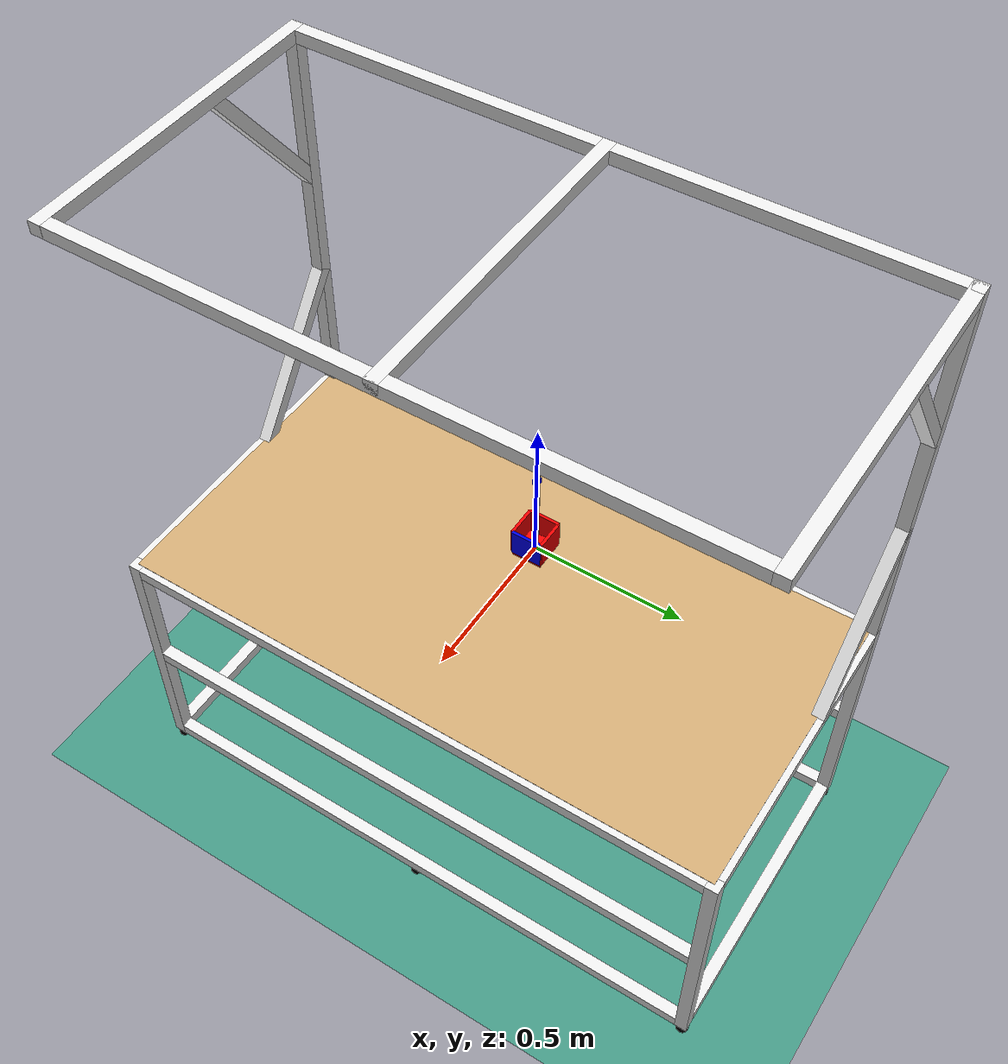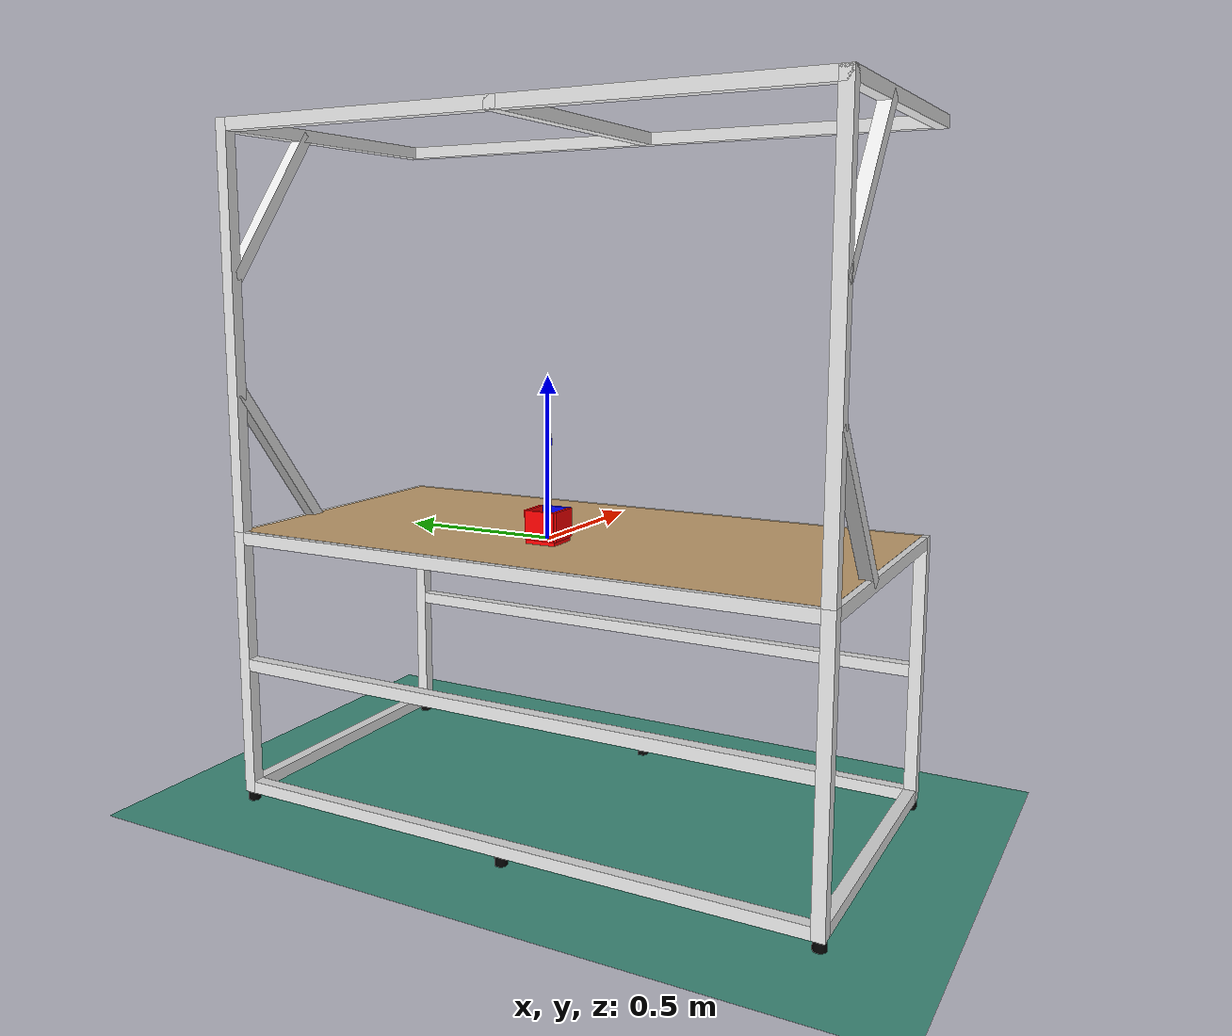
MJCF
<mujoco model="base_surrounding">
  <compiler angle="radian" discardvisual="false" />
  <option collision="all" cone="elliptic" gravity="0 0 -9.81" impratio="3" solver="Newton" timestep="0.002" tolerance="1e-10" />
  <size nconmax="2000" njmax="2000" />
  <asset>
    <texture builtin="gradient" height="32" rgb1="0.26 0.58 0.51" rgb2="0.26 0.58 0.51" type="skybox" width="32" />
  </asset>
  <visual>
    <map zfar="1000" znear="0.001" />
    <scale actuatorwidth="0" />
  </visual>
  <worldbody>
    <light castshadow="true" cutoff="100" diffuse="1 1 1" dir="-0 0 -1.3" directional="true" exponent="1" pos="0 0 1.3" specular=".1 .1 .1" />
    <body name="ground" pos="0 0 -0.94">
      <geom name="ground:geom1" rgba="0.26 0.58 0.51 1" size="0 0 1" type="plane" />
    </body>

    <body name="box_0" pos="0 0 0.0" quat="1 0 0 0">
        <geom pos="0 0 0" size="0.05 0.05 0.01" rgba="1 0 0 1.0" type="box" mass="2.0" friction="0.3 0.001 0.0001" priority="1"/>
        <geom pos="0.05 0 0.0485" size="0.005 0.05 0.045" rgba="0 0 1 1.0" type="box" mass="0.001"/>
        <geom pos="0 0.05 0.0485" size="0.05 0.005 0.045" rgba="1 0 0 1.0" type="box" mass="0.001"/>
        <geom pos="-0.05 0 0.0485" size="0.005 0.05 0.045" rgba="1 0 0 1.0" type="box" mass="0.001"/>
        <geom pos="0 -0.05 0.0485" size="0.05 0.005 0.045" rgba="1 0 0 1.0" type="box" mass="0.001"/>
        <joint name="box_joint" type="free"/>
    </body>

    <body name="target_pos" pos="0 0 0">
    <!--body name="target_pos" pos="0.5 0.5 0.0"-->
      <site type="box" pos="0 0 0" rgba="0 1 0 0.3" size="0.05 0.05 0.01" />
      <site pos="0.05 0 0.0485" size="0.005 0.05 0.045" rgba="0 0 1 0.5" type="box"/>
      <site pos="0 0.05 0.0485" size="0.05 0.005 0.045" rgba="0 1 0 0.5" type="box"/>
      <site pos="-0.05 0 0.0485" size="0.005 0.05 0.045" rgba="0 1 0 0.5" type="box"/>
      <site pos="0 -0.05 0.0485" size="0.05 0.005 0.045" rgba="0 1 0 0.5" type="box"/>
    </body>

    <body name="replan_target_pos" pos="0 0 0">
    <!--body name="replan_target_pos" pos="0.5 0.5 1"-->
      <site type="box" pos="0 0 0" rgba="1 1 0 0.3" size="0.05 0.05 0.01" />
      <site pos="0.05 0 0.0485" size="0.005 0.05 0.045" rgba="0 0 1 0.5" type="box"/>
      <site pos="0 0.05 0.0485" size="0.05 0.005 0.045" rgba="1 1 0 0.5" type="box"/>
      <site pos="-0.05 0 0.0485" size="0.005 0.05 0.045" rgba="1 1 0 0.5" type="box"/>
      <site pos="0 -0.05 0.0485" size="0.05 0.005 0.045" rgba="1 1 0 0.5" type="box"/>
    </body>

    <body name="finger" pos="0 0 .1">
    <!--body name="finger" pos="0.6 0.15 0.1"-->
     <geom type="cylinder" size="0.01 0.15" pos="0 0 0.075" mass="1.0"/>
     <site name="finger_tip" type="box" rgba="0 0 1 1." size="0.01 0.01 0.01" pos="0 0 0.2"/>
    <joint name="finger_x_joint" type="slide" pos="0 0 0" axis="1 0 0" limited="true" range=".15 1" damping="5"/>
    <joint name="finger_y_joint" type="slide" pos="0 0 0" axis="0 1 0" limited="true" range="-.8 0.8" damping="5"/>
    </body>

  </worldbody>
  <actuator>
        <!-- Position controller for the slide joint along x-axis -->
        <motor ctrllimited="true" ctrlrange="-10 10" forcelimited="true" forcerange="-50 50" joint="finger_x_joint" name="finger_x_actuator" />
        <motor ctrllimited="true" ctrlrange="-10 10" forcelimited="true" forcerange="-50 50" joint="finger_y_joint" name="finger_y_actuator" />
        <!-- ... other actuators ... -->
    </actuator>
  <include file="kit_lab_surrounding.xml" />
</mujoco>

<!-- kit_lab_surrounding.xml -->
<mujoco model="PandaFrame">
    <worldbody>
        <body name="table_plane" pos="0.2 0 -0.02">
            <geom type="box" size="0.49 0.98 0.001" rgba="0.8 0.655 0.45 1" solimp="0.999 0.999 0.001"
                  solref="0.002 1"/>

            <body name="front_upper" pos="0.49 0 -0.02">
            <geom type="box" size="0.02 0.96 0.02" rgba=".9 .9 .9 1"/>
            </body>
            <body name="front_mid" pos="0.49 0 -0.445">
            <geom type="box" size="0.02 0.96 0.02" rgba=".9 .9 .9 1"/>
            </body>
            <body name="front_lower" pos="0.49 0 -0.87">
            <geom type="box" size="0.02 0.96 0.02" rgba=".9 .9 .9 1"/>
            </body>

            <body name="back_upper" pos="-0.49 0 -0.02">
            <geom type="box" size="0.02 0.96 0.02" rgba=".9 .9 .9 1"/>
            </body>
            <body name="back_mid" pos="-0.49 0 -0.445">
            <geom type="box" size="0.02 0.96 0.02" rgba=".9 .9 .9 1"/>
            </body>
            <body name="back_lower" pos="-0.49 0 -0.87">
            <geom type="box" size="0.02 0.96 0.02" rgba=".9 .9 .9 1"/>
            </body>

            <body name="vert_front_left" pos="0.49 0.98 -0.445">
            <geom type="box" size="0.02 0.02 0.445" rgba=".9 .9 .9 1"/>
            </body>
            <body name="vert_front_right" pos="0.49 -0.98 -0.445">
            <geom type="box" size="0.02 0.02 0.445" rgba=".9 .9 .9 1"/>
            </body>
            <body name="vert_back_left" pos="-0.49 0.98 -0.445">
            <geom type="box" size="0.02 0.02 0.445" rgba=".9 .9 .9 1"/>
            </body>
            <body name="vert_back_right" pos="-0.49 -0.98 -0.445">
            <geom type="box" size="0.02 0.02 0.445" rgba=".9 .9 .9 1"/>
            </body>

            <body name="side_upper_right" pos="0 -0.98 -0.02">
            <geom type="box" size="0.47 0.02 0.02" rgba=".9 .9 .9 1"/>
            </body>
            <body name="side_lower_right" pos="0 -0.98 -0.87">
            <geom type="box" size="0.47 0.02 0.02" rgba=".9 .9 .9 1"/>
            </body>

            <body name="side_upper_left" pos="0 0.98 -0.02">
            <geom type="box" size="0.47 0.02 0.02" rgba=".9 .9 .9 1"/>
            </body>
            <body name="side_lower_left" pos="0 0.98 -0.87">
            <geom type="box" size="0.47 0.02 0.02" rgba=".9 .9 .9 1"/>
            </body>

            <body name="foot_front_left" pos="0.49 0.98 -0.9">
            <geom type="cylinder" size="0.02 0.02 0.04" rgba="0 0 0 1"/>
            </body>
            <body name="foot_front_mid" pos="0.49 0 -0.9">
            <geom type="cylinder" size="0.02 0.02 0.04" rgba="0 0 0 1"/>
            </body>
            <body name="foot_front_right" pos="0.49 -0.98 -0.9">
            <geom type="cylinder" size="0.02 0.02 0.04" rgba="0 0 0 1"/>
            </body>

            <body name="foot_back_left" pos="-0.49 0.98 -0.9">
            <geom type="cylinder" size="0.02 0.02 0.04" rgba="0 0 0 1"/>
            </body>
            <body name="foot_back_mid" pos="-0.49 0 -0.9">
            <geom type="cylinder" size="0.02 0.02 0.04" rgba="0 0 0 1"/>
            </body>
            <body name="foot_back_right" pos="-0.49 -0.98 -0.9">
            <geom type="cylinder" size="0.02 0.02 0.04" rgba="0 0 0 1"/>
            </body>

            <body name="top_back_left" pos="-0.49 0.98 0.65">
            <geom type="box" size="0.02 0.02 0.65" rgba=".9 .9 .9 1"/>
            </body>
            <body name="top_back_right" pos="-0.49 -0.98 0.65">
            <geom type="box" size="0.02 0.02 0.65" rgba=".9 .9 .9 1"/>
            </body>
            <body name="top_front" pos="0.49 0 1.28">
            <geom type="box" size="0.02 0.96 0.02" rgba=".9 .9 .9 1"/>
            </body>
            <body name="top_back" pos="-0.49 0 1.28">
            <geom type="box" size="0.02 0.96 0.02" rgba=".9 .9 .9 1"/>
            </body>
            <body name="top_side_right" pos="0 -0.98 1.28">
            <geom type="box" size="0.51 0.02 0.02" rgba=".9 .9 .9 1"/>
            </body>
            <body name="top_side_mid" pos="0 0 1.28">
            <geom type="box" size="0.51 0.02 0.02" rgba=".9 .9 .9 1"/>
            </body>
            <body name="top_side_left" pos="0 0.98 1.28">
            <geom type="box" size="0.51 0.02 0.02" rgba=".9 .9 .9 1"/>
            </body>

            <body name="rot_lower_right" pos="-0.31 0.98 0.22" quat="0.2 0 0.1 0">
            <geom type="box" size="0.3 0.02 0.02" rgba=".9 .9 .9 1"/>
            </body>
            <body name="rot_lower_left" pos="-0.31 -0.98 0.22" quat="0.2 0 0.1 0">
            <geom type="box" size="0.3 0.02 0.02" rgba=".9 .9 .9 1"/>
            </body>
            <body name="rot_upper_right" pos="-0.31 0.98 1.04" quat="0.1 0 0.2 0">
            <geom type="box" size="0.3 0.02 0.02" rgba=".9 .9 .9 1"/>
            </body>
            <body name="rot_upper_left" pos="-0.31 -0.98 1.04" quat="0.1 0 0.2 0">
            <geom type="box" size="0.3 0.02 0.02" rgba=".9 .9 .9 1"/>
            </body>

            <body name="support_body" pos="0 0 -0.4" >
            <geom type="box" size="0.49 0.98 0.4" rgba="0 0 0 0" solimp="0.999  0.999 0.001" solref="0.002 1"/>
            </body>
        </body>
    </worldbody>
</mujoco>
